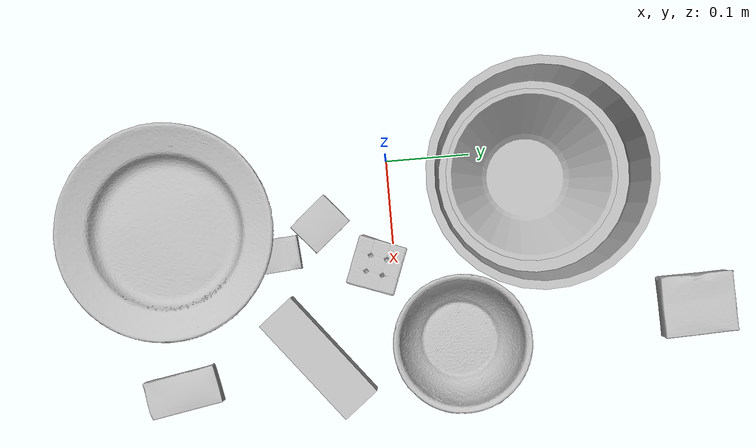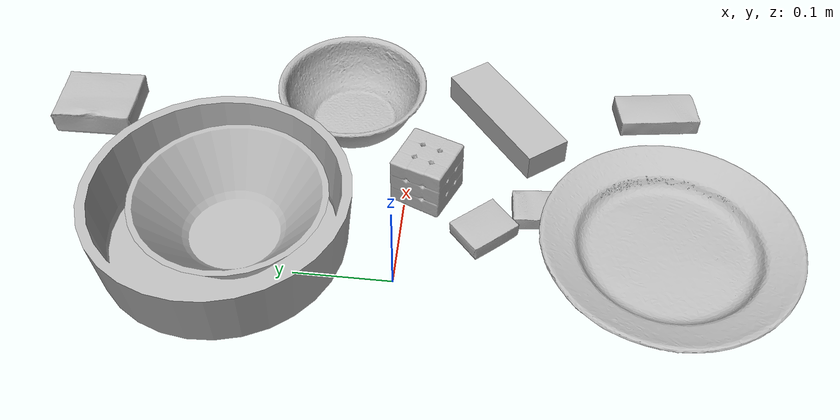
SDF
<sdf version="1.4">
  <world name="default">
    <light name="light1" type="point">
      <pose>0 0 1 0 0 0</pose>
      <diffuse>3 3 3 1</diffuse>
      <specular>3 3 3 1</specular>
    </light>
    <light name="light2" type="point">
      <pose>0 0.5 2 0 0 0</pose>
      <diffuse>1 1 1 1</diffuse>
      <specular>1 1 1 1</specular>
    </light>
    <light name="light3" type="point">
      <pose>0 0.5 2 0 0 0</pose>
      <diffuse>3 3 3 1</diffuse>
      <specular>3 3 3 1</specular>
    </light>
    <scene>
      <ambient>0.7 0.7 0.7</ambient>
    </scene>
    <model name="box1">
      <link name="link_box1">
        <collision name="default">
          <geometry>
            <mesh>
              <uri>model://jenga/collision_meshes/collision.obj</uri>
              <scale>1.0 1.0 1.0</scale>
            </mesh>
          </geometry>
          <surface>
            <friction>
              <ode>
                <mu>0.5</mu>
                <mu2>0.5</mu2>
              </ode>
            </friction>
          <contact>
        <ode>
            <max_vel>0</max_vel>
            <min_depth>0.0001</min_depth>
            <kp>1e8</kp>
        </ode>
    </contact></surface>
        </collision>
        <visual name="default">
          <geometry>
            <mesh>
              <uri>model://jenga/visual_meshes/visual.dae</uri>
              <scale>1.0 1.0 1.0</scale>
            </mesh>
          </geometry>
        </visual>
        <inertial>
          <mass>0.2830650806427002</mass>
          <pose>-2.502855807051674e-07 -0.00010250010382151231 -4.0923401684267446e-05 0.0 -7.34215461761844e-07 0.0</pose>
          <inertia>
            <ixx>7.833097e-05</ixx>
            <iyy>0.0005307686</iyy>
            <izz>0.0005666406</izz>
            <ixy>0</ixy>
            <ixz>0</ixz>
            <iyz>0</iyz>
          </inertia>
        </inertial>
      </link>
      <pose>0.22661137580871582 -0.09913184493780136 0.014999995939433575 -1.4397429817391996e-09 -3.845292009691478e-10 0.664308505531582</pose>
    </model>
    <model name="box11">
      <link name="link_box11">
        <collision name="default">
          <geometry>
            <mesh>
              <uri>model://cracker_box/collision_meshes/collision.obj</uri>
              <scale>0.25 0.25 0.25</scale>
            </mesh>
          </geometry>
          <surface>
            <friction>
              <ode>
                <mu>0.5</mu>
                <mu2>0.5</mu2>
              </ode>
            </friction>
          <contact>
        <ode>
            <max_vel>0</max_vel>
            <min_depth>0.0001</min_depth>
            <kp>1e8</kp>
        </ode>
    </contact></surface>
        </collision>
        <visual name="default">
          <geometry>
            <mesh>
              <uri>model://cracker_box/visual_meshes/visual.dae</uri>
              <scale>0.25 0.25 0.25</scale>
            </mesh>
          </geometry>
        </visual>
        <inertial>
          <mass>0.04137800261378288</mass>
          <pose>0.00023660347505938262 6.358561950037256e-05 -0.0004257383698131889 -0.00031620748486547713 -0.011106488669102847 0.002546795699546287</pose>
          <inertia>
            <ixx>6.577948e-06</ixx>
            <iyy>1.0861484e-05</iyy>
            <izz>1.5500336e-05</izz>
            <ixy>0</ixy>
            <ixz>0</ixz>
            <iyz>0</iyz>
          </inertia>
        </inertial>
      </link>
      <pose>0.10153527557849884 -0.138315349817276 0.009120713919401169 -0.011644329656300563 -0.00728107136823855 -1.4908691008961292</pose>
    </model>
    <model name="box2">
      <link name="link_box2">
        <collision name="default">
          <geometry>
            <mesh>
              <uri>model://gelatin_box/collision_meshes/collision.obj</uri>
              <scale>1.0 1.0 1.0</scale>
            </mesh>
          </geometry>
          <surface>
            <friction>
              <ode>
                <mu>0.5</mu>
                <mu2>0.5</mu2>
              </ode>
            </friction>
          <contact>
        <ode>
            <max_vel>0</max_vel>
            <min_depth>0.0001</min_depth>
            <kp>1e8</kp>
        </ode>
    </contact></surface>
        </collision>
        <visual name="default">
          <geometry>
            <mesh>
              <uri>model://gelatin_box/visual_meshes/visual.dae</uri>
              <scale>1.0 1.0 1.0</scale>
            </mesh>
          </geometry>
        </visual>
        <inertial>
          <mass>0.22900472581386566</mass>
          <pose>0.000431961816502735 0.00011156871914863586 -0.0003640321083366871 -0.001050372089182411 -0.004755818223717792 0.016440559471606643</pose>
          <inertia>
            <ixx>0.00016165864</ixx>
            <iyy>0.00011547193</iyy>
            <izz>0.00024608054</izz>
            <ixy>0</ixy>
            <ixz>0</ixz>
            <iyz>0</iyz>
          </inertia>
        </inertial>
      </link>
      <pose>0.2018698751926422 0.35477492213249207 0.015168317593634129 0.005597415262296945 -0.007304475655197875 -3.1284972714287624</pose>
    </model>
    <model name="box21">
      <link name="link_box21">
        <collision name="default">
          <geometry>
            <mesh>
              <uri>model://sugar_box/collision_meshes/collision.obj</uri>
              <scale>0.5 0.5 0.5</scale>
            </mesh>
          </geometry>
          <surface>
            <friction>
              <ode>
                <mu>0.5</mu>
                <mu2>0.5</mu2>
              </ode>
            </friction>
          <contact>
        <ode>
            <max_vel>0</max_vel>
            <min_depth>0.0001</min_depth>
            <kp>1e8</kp>
        </ode>
    </contact></surface>
        </collision>
        <visual name="default">
          <geometry>
            <mesh>
              <uri>model://sugar_box/visual_meshes/visual.dae</uri>
              <scale>0.5 0.5 0.5</scale>
            </mesh>
          </geometry>
        </visual>
        <inertial>
          <mass>0.12271630764007568</mass>
          <pose>0.0005171863595023751 1.924554817378521e-05 -0.00018182404164690524 -0.00040462595111886014 0.0010506636380741379 0.0026153785562511135</pose>
          <inertia>
            <ixx>2.5561721e-05</ixx>
            <iyy>8.262075e-05</iyy>
            <izz>9.890688e-05</izz>
            <ixy>0</ixy>
            <ixz>0</ixz>
            <iyz>0</iyz>
          </inertia>
        </inertial>
      </link>
      <pose>0.25439453125 -0.263781875371933 0.011399314738810062 0.0007751831070618481 -0.023432538812206 1.7417716883880847</pose>
    </model>
    <model name="box3">
      <link name="link_box3">
        <collision name="default">
          <geometry>
            <mesh>
              <uri>model://rubiks_cube/collision_meshes/collision.obj</uri>
              <scale>1.0 1.0 1.0</scale>
            </mesh>
          </geometry>
          <surface>
            <friction>
              <ode>
                <mu>0.5</mu>
                <mu2>0.5</mu2>
              </ode>
            </friction>
          <contact>
        <ode>
            <max_vel>0</max_vel>
            <min_depth>0.0001</min_depth>
            <kp>1e8</kp>
        </ode>
    </contact></surface>
        </collision>
        <visual name="default">
          <geometry>
            <mesh>
              <uri>model://rubiks_cube/visual_meshes/visual.dae</uri>
              <scale>1.0 1.0 1.0</scale>
            </mesh>
          </geometry>
        </visual>
        <inertial>
          <mass>0.16665811836719513</mass>
          <pose>2.6721039830590598e-05 5.256966323941015e-05 -7.264316082000732e-06 -0.05467166844566422 -0.0981397083583286 -0.034457090447706985</pose>
          <inertia>
            <ixx>9.20898e-05</ixx>
            <iyy>9.166034e-05</iyy>
            <izz>9.285292e-05</izz>
            <ixy>0</ixy>
            <ixz>0</ixz>
            <iyz>0</iyz>
          </inertia>
        </inertial>
      </link>
      <pose>0.12282106280326843 -0.02076788805425167 0.028678931295871735 -4.908296023926473e-06 -1.8286699936595181e-06 1.2004493339504108</pose>
    </model>
    <model name="box31">
      <link name="link_box31">
        <collision name="default">
          <geometry>
            <mesh>
              <uri>model://pudding_box/collision_meshes/collision.obj</uri>
              <scale>0.5 0.5 0.5</scale>
            </mesh>
          </geometry>
          <surface>
            <friction>
              <ode>
                <mu>0.5</mu>
                <mu2>0.5</mu2>
              </ode>
            </friction>
          <contact>
        <ode>
            <max_vel>0</max_vel>
            <min_depth>0.0001</min_depth>
            <kp>1e8</kp>
        </ode>
    </contact></surface>
        </collision>
        <visual name="default">
          <geometry>
            <mesh>
              <uri>model://pudding_box/visual_meshes/visual.dae</uri>
              <scale>0.5 0.5 0.5</scale>
            </mesh>
          </geometry>
        </visual>
        <inertial>
          <mass>0.023591291159391403</mass>
          <pose>0.00024474109522998333 0.00040339428232982755 -0.0002594413817860186 0.00521310040348307 -0.006603797312523218 0.020079827030686108</pose>
          <inertia>
            <ixx>6.667184e-06</ixx>
            <iyy>4.4857293e-06</iyy>
            <izz>9.845841e-06</izz>
            <ixy>0</ixy>
            <ixz>0</ixz>
            <iyz>0</iyz>
          </inertia>
        </inertial>
      </link>
      <pose>0.0688265934586525 -0.08438502252101898 0.009862900711596012 0.022348678309942437 -0.011391562213206172 -2.438967273829527</pose>
    </model>
    <model name="plate1">
      <link name="link_plate1">
        <collision name="default">
          <geometry>
            <mesh>
              <uri>model://plate/collision_meshes/collision.obj</uri>
              <scale>1.0 1.0 1.0</scale>
            </mesh>
          </geometry>
          <surface>
            <friction>
              <ode>
                <mu>0.5</mu>
                <mu2>0.5</mu2>
              </ode>
            </friction>
          <contact>
        <ode>
            <max_vel>0</max_vel>
            <min_depth>0.0001</min_depth>
            <kp>1e8</kp>
        </ode>
    </contact></surface>
        </collision>
        <visual name="default">
          <geometry>
            <mesh>
              <uri>model://plate/visual_meshes/visual.dae</uri>
              <scale>1.0 1.0 1.0</scale>
            </mesh>
          </geometry>
        </visual>
        <inertial>
          <mass>0.2114637792110443</mass>
          <pose>-0.0006044656038284302 0.0002782588708214462 -0.0010561993112787604 0.002218744002621918 -0.003225513006599694 0.45262307488796183</pose>
          <inertia>
            <ixx>0.0009892316</ixx>
            <iyy>0.0009797702</iyy>
            <izz>0.0019347895</izz>
            <ixy>0</ixy>
            <ixz>0</ixz>
            <iyz>0</iyz>
          </inertia>
        </inertial>
      </link>
      <pose>0.06313972920179367 -0.2688567638397217 0.013733058236539364 4.729246659386366e-07 7.244403249568653e-07 -1.5099955806782352</pose>
    </model>
    <model name="bowl1">
      <link name="link_bowl1">
        <collision name="default">
          <geometry>
            <mesh>
              <uri>model://bowl_a/collision_meshes/collision.obj</uri>
              <scale>1.0 1.0 1.0</scale>
            </mesh>
          </geometry>
          <surface>
            <friction>
              <ode>
                <mu>0.5</mu>
                <mu2>0.5</mu2>
              </ode>
            </friction>
          <contact>
        <ode>
            <max_vel>0</max_vel>
            <min_depth>0.0001</min_depth>
            <kp>1e8</kp>
        </ode>
    </contact></surface>
        </collision>
        <visual name="default">
          <geometry>
            <mesh>
              <uri>model://bowl_a/visual_meshes/visual.dae</uri>
              <scale>1.0 1.0 1.0</scale>
            </mesh>
          </geometry>
        </visual>
        <inertial>
          <mass>0.48499906063079834</mass>
          <pose>0.00027867438620887697 4.731262743007392e-05 -0.0013765298062935472 -0.0009805334386135593 -0.0010938262367740986 -0.19123808511586568</pose>
          <inertia>
            <ixx>0.0013808149</ixx>
            <iyy>0.0013892918</iyy>
            <izz>0.0024558324</izz>
            <ixy>0</ixy>
            <ixz>0</ixz>
            <iyz>0</iyz>
          </inertia>
        </inertial>
      </link>
      <pose>0.03452405706048012 0.1639348417520523 0.038131874054670334 -0.002101401932371896 0.0014140391333358913 2.718075920356763</pose>
    </model>
    <model name="plate2">
      <link name="link_plate2">
        <collision name="default">
          <geometry>
            <mesh>
              <uri>model://pan_tefal/collision_meshes/collision.obj</uri>
              <scale>1.0 1.0 1.0</scale>
            </mesh>
          </geometry>
          <surface>
            <friction>
              <ode>
                <mu>0.5</mu>
                <mu2>0.5</mu2>
              </ode>
            </friction>
          <contact>
        <ode>
            <max_vel>0</max_vel>
            <min_depth>0.0001</min_depth>
            <kp>1e8</kp>
        </ode>
    </contact></surface>
        </collision>
        <visual name="default">
          <geometry>
            <mesh>
              <uri>model://pan_tefal/visual_meshes/visual.dae</uri>
              <scale>1.0 1.0 1.0</scale>
            </mesh>
          </geometry>
        </visual>
        <inertial>
          <mass>1.510846495628357</mass>
          <pose>-0.00018002149590756744 3.279069278505631e-05 -0.008514934219419956 0.0008190286460061649 -0.00033014112223844094 -0.3318560039733936</pose>
          <inertia>
            <ixx>0.010429303</ixx>
            <iyy>0.010496541</iyy>
            <izz>0.01919834</izz>
            <ixy>0</ixy>
            <ixz>0</ixz>
            <iyz>0</iyz>
          </inertia>
        </inertial>
      </link>
      <pose>0.03343597427010536 0.17537879943847656 0.03805002197623253 4.8686584575655904e-08 7.439697907941323e-08 1.412326017725876</pose>
    </model>
    <model name="bowl2">
      <link name="link_bowl2">
        <collision name="default">
          <geometry>
            <mesh>
              <uri>model://bowl/collision_meshes/collision.obj</uri>
              <scale>1.0 1.0 1.0</scale>
            </mesh>
          </geometry>
          <surface>
            <friction>
              <ode>
                <mu>0.5</mu>
                <mu2>0.5</mu2>
              </ode>
            </friction>
          <contact>
        <ode>
            <max_vel>0</max_vel>
            <min_depth>0.0001</min_depth>
            <kp>1e8</kp>
        </ode>
    </contact></surface>
        </collision>
        <visual name="default">
          <geometry>
            <mesh>
              <uri>model://bowl/visual_meshes/visual.dae</uri>
              <scale>1.0 1.0 1.0</scale>
            </mesh>
          </geometry>
        </visual>
        <inertial>
          <mass>0.12714597582817078</mass>
          <pose>0.0002044505235971883 -0.0010302012087777257 -0.0008042659610509872 -0.015764101160635133 0.01454679544325816 0.7140405339594252</pose>
          <inertia>
            <ixx>0.0002920644</ixx>
            <iyy>0.00028553858</iyy>
            <izz>0.0004913528</izz>
            <ixy>0</ixy>
            <ixz>0</ixz>
            <iyz>0</iyz>
          </inertia>
        </inertial>
      </link>
      <pose>0.22120222449302673 0.07051627337932587 0.027780013158917427 -2.3219866322556548e-08 -1.3739394474708347e-08 1.3312089232405717</pose>
    </model>
  <physics type="ode">
      <max_contacts>50</max_contacts>
      <ode>
        <solver>
          <type>quick</type>
          <iters>75</iters>
        </solver>
        <constraints>
          <contact_max_correcting_vel>0</contact_max_correcting_vel>
          <contact_surface_layer>0</contact_surface_layer>
        </constraints>
      </ode>
    </physics></world>
</sdf>
